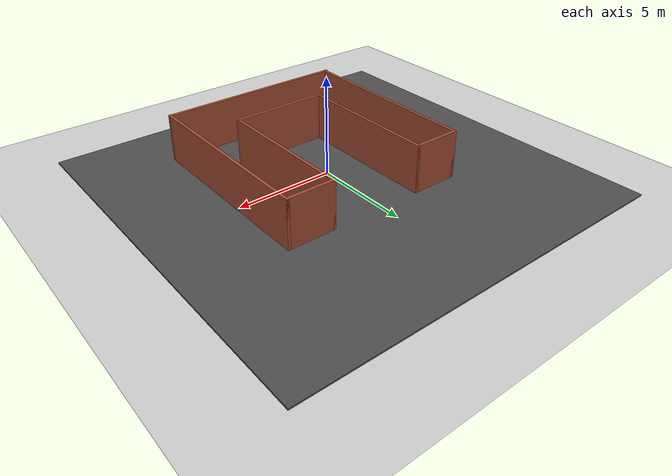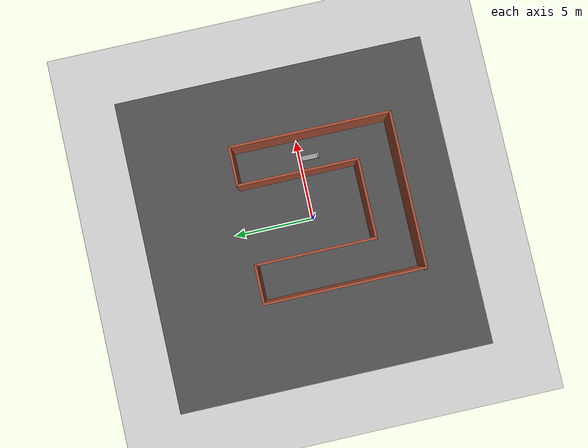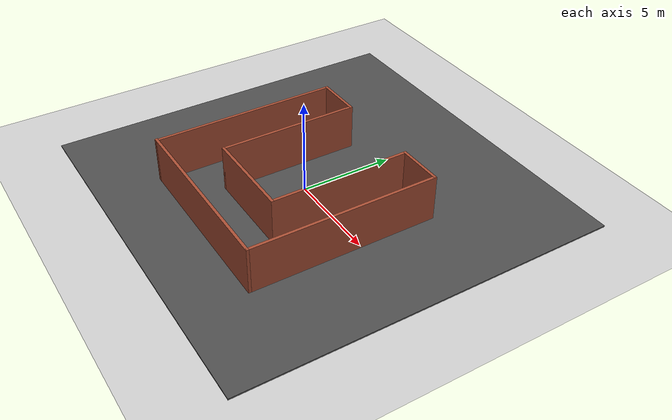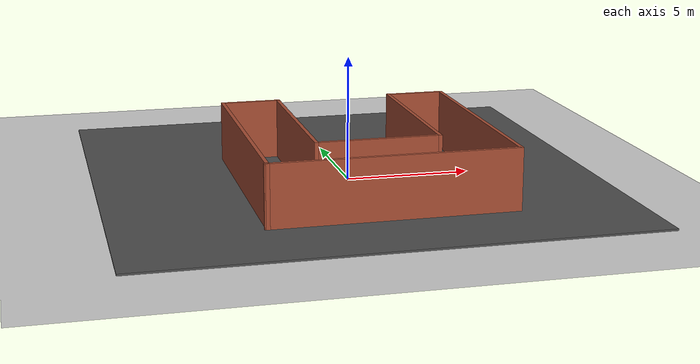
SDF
<sdf version="1.6">
 <world name="default">
  <light name="sun" type="directional">
   <pose>0 0 10 0 -0 0</pose>
   <diffuse>0.8 0.8 0.8 1</diffuse>
   <specular>0.1 0.1 0.1 1</specular>
   <attenuation>
    <range>1000</range>
    <constant>0.9</constant>
    <linear>0.01</linear>
    <quadratic>0.001</quadratic>
   </attenuation>
   <direction>-0.5 0.5 -1</direction>
  </light>
  <model name="ground_plane">
   <static>1</static>
   <link name="link">
    <collision name="collision">
     <geometry><plane><normal>0 0 1</normal><size>100 100</size></plane></geometry>
     <surface><friction><ode><mu>100</mu><mu2>50</mu2></ode></friction></surface>
    </collision>
    <visual name="visual">
     <cast_shadows>0</cast_shadows>
     <geometry><plane><normal>0 0 1</normal><size>100 100</size></plane></geometry>
     <material>
      <script><uri>file://media/materials/scripts/gazebo.material</uri><name>Gazebo/Grey</name></script>
     </material>
    </visual>
   </link>
  </model>
  <gravity>0 0 -9.8</gravity>
  <magnetic_field>6e-06 2.3e-05 -4.2e-05</magnetic_field>
  <atmosphere type="adiabatic"/>
  <physics name="default_physics" default="0" type="ode">
   <max_step_size>0.001</max_step_size>
   <real_time_factor>1</real_time_factor>
   <real_time_update_rate>1000</real_time_update_rate>
  </physics>
  <scene><ambient>0.4 0.4 0.4 1</ambient><background>0.7 0.7 0.7 1</background><shadows>1</shadows></scene>
  <spherical_coordinates>
   <surface_model>EARTH_WGS84</surface_model>
   <latitude_deg>0</latitude_deg>
   <longitude_deg>0</longitude_deg>
   <elevation>0</elevation>
   <heading_deg>0</heading_deg>
  </spherical_coordinates>
  <model name="asphalt_plane_0">
   <static>1</static>
   <link name="link">
    <collision name="collision"><geometry><box><size>20 20 0.1</size></box></geometry></collision>
    <visual name="visual">
     <cast_shadows>0</cast_shadows>
     <geometry><box><size>20 20 0.1</size></box></geometry>
     <material>
      <script>
       <uri>model://asphalt_plane/materials/scripts</uri>
       <uri>model://asphalt_plane/materials/textures</uri>
       <name>vrc/asphalt</name>
      </script>
     </material>
    </visual>
   </link>
   <pose>-0.094497 0.742491 0 0 -0 0</pose>
  </model>
  <model name="oficina_0">
   <pose>0.337519 -0.906261 0 0 -0 0</pose>
   <link name="Wall_10">
    <collision name="Wall_10_Collision">
     <geometry><box><size>5 0.15 2.5</size></box></geometry>
     <pose>0 0 1.25 0 -0 0</pose>
    </collision>
    <visual name="Wall_10_Visual">
     <pose>0 0 1.25 0 -0 0</pose>
     <geometry><box><size>5 0.15 2.5</size></box></geometry>
     <material>
      <script><uri>file://media/materials/scripts/gazebo.material</uri><name>Gazebo/Bricks</name></script>
      <ambient>1 1 1 1</ambient>
     </material>
    </visual>
    <pose>0.025 -2.425 0 0 -0 0</pose>
   </link>
   <link name="Wall_11">
    <collision name="Wall_11_Collision">
     <geometry><box><size>7.5 0.15 2.5</size></box></geometry>
     <pose>0 0 1.25 0 -0 0</pose>
    </collision>
    <visual name="Wall_11_Visual">
     <pose>0 0 1.25 0 -0 0</pose>
     <geometry><box><size>7.5 0.15 2.5</size></box></geometry>
     <material>
      <script><uri>file://media/materials/scripts/gazebo.material</uri><name>Gazebo/Bricks</name></script>
      <ambient>1 1 1 1</ambient>
     </material>
    </visual>
    <pose>2.45 1.25 0 0 -0 1.5708</pose>
   </link>
   <link name="Wall_12">
    <collision name="Wall_12_Collision">
     <geometry><box><size>2.5 0.15 2.5</size></box></geometry>
     <pose>0 0 1.25 0 -0 0</pose>
    </collision>
    <visual name="Wall_12_Visual">
     <pose>0 0 1.25 0 -0 0</pose>
     <geometry><box><size>2.5 0.15 2.5</size></box></geometry>
     <material>
      <script><uri>file://media/materials/scripts/gazebo.material</uri><name>Gazebo/Bricks</name></script>
      <ambient>1 1 1 1</ambient>
     </material>
    </visual>
    <pose>3.625 4.925 0 0 -0 0</pose>
   </link>
   <link name="Wall_13">
    <collision name="Wall_13_Collision">
     <geometry><box><size>10 0.15 2.5</size></box></geometry>
     <pose>0 0 1.25 0 -0 0</pose>
    </collision>
    <visual name="Wall_13_Visual">
     <pose>0 0 1.25 0 -0 0</pose>
     <geometry><box><size>10 0.15 2.5</size></box></geometry>
     <material>
      <script><uri>file://media/materials/scripts/gazebo.material</uri><name>Gazebo/Bricks</name></script>
      <ambient>1 1 1 1</ambient>
     </material>
    </visual>
    <pose>4.8 0 0 0 0 -1.5708</pose>
   </link>
   <link name="Wall_14">
    <collision name="Wall_14_Collision">
     <geometry><box><size>9.75 0.15 2.5</size></box></geometry>
     <pose>0 0 1.25 0 -0 0</pose>
    </collision>
    <visual name="Wall_14_Visual">
     <pose>0 0 1.25 0 -0 0</pose>
     <geometry><box><size>9.75 0.15 2.5</size></box></geometry>
     <material>
      <script><uri>file://media/materials/scripts/gazebo.material</uri><name>Gazebo/Bricks</name></script>
      <ambient>1 1 1 1</ambient>
     </material>
    </visual>
    <pose>0 -4.925 0 0 -0 3.14159</pose>
   </link>
   <link name="Wall_7">
    <collision name="Wall_7_Collision">
     <geometry><box><size>10 0.15 2.5</size></box></geometry>
     <pose>0 0 1.25 0 -0 0</pose>
    </collision>
    <visual name="Wall_7_Visual">
     <pose>0 0 1.25 0 -0 0</pose>
     <geometry><box><size>10 0.15 2.5</size></box></geometry>
     <material>
      <script><uri>file://media/materials/scripts/gazebo.material</uri><name>Gazebo/Bricks</name></script>
      <ambient>1 1 1 1</ambient>
     </material>
    </visual>
    <pose>-4.75 0 0 0 -0 1.5708</pose>
   </link>
   <link name="Wall_8">
    <collision name="Wall_8_Collision">
     <geometry><box><size>2.5 0.15 2.5</size></box></geometry>
     <pose>0 0 1.25 0 -0 0</pose>
    </collision>
    <visual name="Wall_8_Visual">
     <pose>0 0 1.25 0 -0 0</pose>
     <geometry><box><size>2.5 0.15 2.5</size></box></geometry>
     <material>
      <script><uri>file://media/materials/scripts/gazebo.material</uri><name>Gazebo/Bricks</name></script>
      <ambient>1 1 1 1</ambient>
     </material>
    </visual>
    <pose>-3.575 4.925 0 0 -0 0</pose>
   </link>
   <link name="Wall_9">
    <collision name="Wall_9_Collision">
     <geometry><box><size>7.5 0.15 2.5</size></box></geometry>
     <pose>0 0 1.25 0 -0 0</pose>
    </collision>
    <visual name="Wall_9_Visual">
     <pose>0 0 1.25 0 -0 0</pose>
     <geometry><box><size>7.5 0.15 2.5</size></box></geometry>
     <material>
      <script><uri>file://media/materials/scripts/gazebo.material</uri><name>Gazebo/Bricks</name></script>
      <ambient>1 1 1 1</ambient>
     </material>
    </visual>
    <pose>-2.4 1.25 0 0 0 -1.5708</pose>
   </link>
   <static>1</static>
  </model>
  <model name="robot_0">
   <link name="link_4">
    <pose>0 0 0.133333 0 -0 0</pose>
    <inertial>
     <mass>1</mass>
     <inertia>
      <ixx>0.166667</ixx>
      <ixy>0</ixy>
      <ixz>0</ixz>
      <iyy>0.166667</iyy>
      <iyz>0</iyz>
      <izz>0.166667</izz>
     </inertia>
    </inertial>
    <visual name="visual">
     <geometry><box><size>0.3 1 0.1</size></box></geometry>
     <material>
      <lighting>1</lighting>
      <script><uri>file://media/materials/scripts/gazebo.material</uri><name>Gazebo/Grey</name></script>
      <ambient>0.3 0.3 0.3 1</ambient>
      <diffuse>0.7 0.7 0.7 1</diffuse>
      <specular>0.01 0.01 0.01 1</specular>
      <emissive>0 0 0 1</emissive>
      <shader type="vertex"><normal_map>__default__</normal_map></shader>
     </material>
    </visual>
    <collision name="collision">
     <geometry><box><size>0.3 1 0.1</size></box></geometry>
     <surface>
      <friction>
       <ode><mu>1</mu><mu2>1</mu2><fdir1>0 0 0</fdir1><slip1>0</slip1><slip2>0</slip2></ode>
       <torsional>
        <coefficient>1</coefficient>
        <patch_radius>0</patch_radius>
        <surface_radius>0</surface_radius>
        <use_patch_radius>1</use_patch_radius>
        <ode><slip>0</slip></ode>
       </torsional>
      </friction>
      <bounce><restitution_coefficient>0</restitution_coefficient><threshold>1e+06</threshold></bounce>
      <contact>
       <collide_without_contact>0</collide_without_contact>
       <collide_without_contact_bitmask>1</collide_without_contact_bitmask>
       <collide_bitmask>1</collide_bitmask>
       <ode>
        <soft_cfm>0</soft_cfm>
        <soft_erp>0.2</soft_erp>
        <kp>1e+13</kp>
        <kd>1</kd>
        <max_vel>0.01</max_vel>
        <min_depth>0</min_depth>
       </ode>
       <bullet>
        <split_impulse>1</split_impulse>
        <split_impulse_penetration_threshold>-0.01</split_impulse_penetration_threshold>
        <soft_cfm>0</soft_cfm>
        <soft_erp>0.2</soft_erp>
        <kp>1e+13</kp>
        <kd>1</kd>
       </bullet>
      </contact>
     </surface>
    </collision>
   </link>
   <link name="link_6">
    <pose>0 0.550019 -0.066667 0 -0 0</pose>
    <inertial>
     <mass>1</mass>
     <inertia><ixx>0.145833</ixx><ixy>0</ixy><ixz>0</ixz><iyy>0.145833</iyy><iyz>0</iyz><izz>0.125</izz></inertia>
    </inertial>
    <visual name="visual">
     <pose>0 0 0.2 1.5707 -0 0</pose>
     <geometry><cylinder><radius>0.2</radius><length>0.1</length></cylinder></geometry>
     <material>
      <lighting>1</lighting>
      <script><uri>file://media/materials/scripts/gazebo.material</uri><name>Gazebo/Grey</name></script>
      <ambient>0.3 0.3 0.3 1</ambient>
      <diffuse>0.7 0.7 0.7 1</diffuse>
      <specular>0.01 0.01 0.01 1</specular>
      <emissive>0 0 0 1</emissive>
      <shader type="vertex"><normal_map>__default__</normal_map></shader>
     </material>
    </visual>
    <collision name="collision">
     <pose>0 0 0.2 1.5707 -0 0</pose>
     <geometry><cylinder><radius>0.2</radius><length>0.1</length></cylinder></geometry>
     <surface>
      <friction>
       <ode><mu>1</mu><mu2>1</mu2><fdir1>0 0 0</fdir1><slip1>0</slip1><slip2>0</slip2></ode>
       <torsional>
        <coefficient>1</coefficient>
        <patch_radius>0</patch_radius>
        <surface_radius>0</surface_radius>
        <use_patch_radius>1</use_patch_radius>
        <ode><slip>0</slip></ode>
       </torsional>
      </friction>
      <bounce><restitution_coefficient>0</restitution_coefficient><threshold>1e+06</threshold></bounce>
      <contact>
       <collide_without_contact>0</collide_without_contact>
       <collide_without_contact_bitmask>1</collide_without_contact_bitmask>
       <collide_bitmask>1</collide_bitmask>
       <ode>
        <soft_cfm>0</soft_cfm>
        <soft_erp>0.2</soft_erp>
        <kp>1e+13</kp>
        <kd>1</kd>
        <max_vel>0.01</max_vel>
        <min_depth>0</min_depth>
       </ode>
       <bullet>
        <split_impulse>1</split_impulse>
        <split_impulse_penetration_threshold>-0.01</split_impulse_penetration_threshold>
        <soft_cfm>0</soft_cfm>
        <soft_erp>0.2</soft_erp>
        <kp>1e+13</kp>
        <kd>1</kd>
       </bullet>
      </contact>
     </surface>
    </collision>
   </link>
   <link name="link_6_clone">
    <pose>0 -0.550019 -0.066667 0 -0 0</pose>
    <inertial>
     <mass>1</mass>
     <inertia><ixx>0.145833</ixx><ixy>0</ixy><ixz>0</ixz><iyy>0.145833</iyy><iyz>0</iyz><izz>0.125</izz></inertia>
    </inertial>
    <visual name="visual">
     <pose>0 0 0.2 1.5707 -0 0</pose>
     <geometry><cylinder><radius>0.2</radius><length>0.1</length></cylinder></geometry>
     <material>
      <lighting>1</lighting>
      <script><uri>file://media/materials/scripts/gazebo.material</uri><name>Gazebo/Grey</name></script>
      <ambient>0.3 0.3 0.3 1</ambient>
      <diffuse>0.7 0.7 0.7 1</diffuse>
      <specular>0.01 0.01 0.01 1</specular>
      <emissive>0 0 0 1</emissive>
      <shader type="vertex"><normal_map>__default__</normal_map></shader>
     </material>
    </visual>
    <collision name="collision">
     <pose>0 0 0.2 1.5707 -0 0</pose>
     <geometry><cylinder><radius>0.2</radius><length>0.1</length></cylinder></geometry>
     <surface>
      <friction>
       <ode><mu>1</mu><mu2>1</mu2><fdir1>0 0 0</fdir1><slip1>0</slip1><slip2>0</slip2></ode>
       <torsional>
        <coefficient>1</coefficient>
        <patch_radius>0</patch_radius>
        <surface_radius>0</surface_radius>
        <use_patch_radius>1</use_patch_radius>
        <ode><slip>0</slip></ode>
       </torsional>
      </friction>
      <bounce><restitution_coefficient>0</restitution_coefficient><threshold>1e+06</threshold></bounce>
      <contact>
       <collide_without_contact>0</collide_without_contact>
       <collide_without_contact_bitmask>1</collide_without_contact_bitmask>
       <collide_bitmask>1</collide_bitmask>
       <ode>
        <soft_cfm>0</soft_cfm>
        <soft_erp>0.2</soft_erp>
        <kp>1e+13</kp>
        <kd>1</kd>
        <max_vel>0.01</max_vel>
        <min_depth>0</min_depth>
       </ode>
       <bullet>
        <split_impulse>1</split_impulse>
        <split_impulse_penetration_threshold>-0.01</split_impulse_penetration_threshold>
        <soft_cfm>0</soft_cfm>
        <soft_erp>0.2</soft_erp>
        <kp>1e+13</kp>
        <kd>1</kd>
       </bullet>
      </contact>
     </surface>
    </collision>
   </link>
   <joint name="link_4_JOINT_0" type="revolute">
    <parent>link_4</parent>
    <child>link_6</child>
    <axis>
     <xyz>0 0 1</xyz>
     <use_parent_model_frame>0</use_parent_model_frame>
     <limit>
      <lower>-1.79769e+308</lower>
      <upper>1.79769e+308</upper>
      <effort>-1</effort>
      <velocity>-1</velocity>
     </limit>
     <dynamics>
      <spring_reference>0</spring_reference>
      <spring_stiffness>0</spring_stiffness>
      <damping>0</damping>
     </dynamics>
    </axis>
    <physics>
     <ode><limit><cfm>0</cfm><erp>0.2</erp></limit><suspension><cfm>0</cfm><erp>0.2</erp></suspension></ode>
    </physics>
   </joint>
   <joint name="link_4_JOINT_1" type="revolute">
    <parent>link_4</parent>
    <child>link_6_clone</child>
    <axis>
     <xyz>1 0 0</xyz>
     <use_parent_model_frame>0</use_parent_model_frame>
     <limit>
      <lower>-1.79769e+308</lower>
      <upper>1.79769e+308</upper>
      <effort>-1</effort>
      <velocity>-1</velocity>
     </limit>
     <dynamics>
      <spring_reference>0</spring_reference>
      <spring_stiffness>0</spring_stiffness>
      <damping>0</damping>
     </dynamics>
    </axis>
    <physics>
     <ode><limit><cfm>0</cfm><erp>0.2</erp></limit><suspension><cfm>0</cfm><erp>0.2</erp></suspension></ode>
    </physics>
   </joint>
   <static>0</static>
   <pose>3.83608 -0.638107 0.116666 -1e-06 0.001751 -0.001966</pose>
  </model>
 </world>
</sdf>
